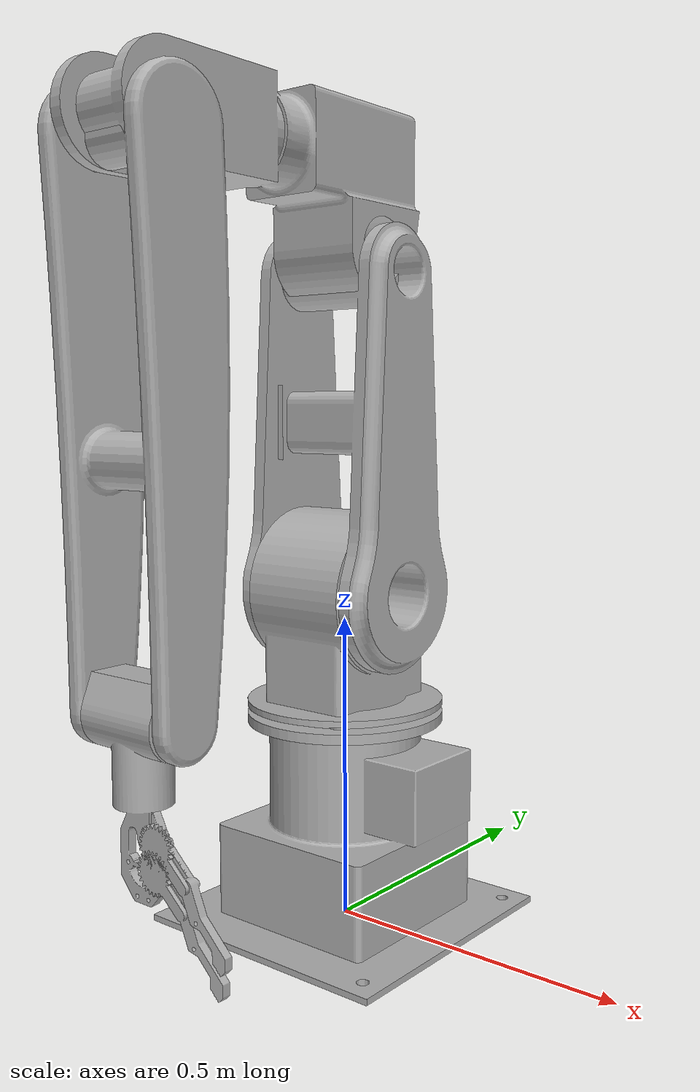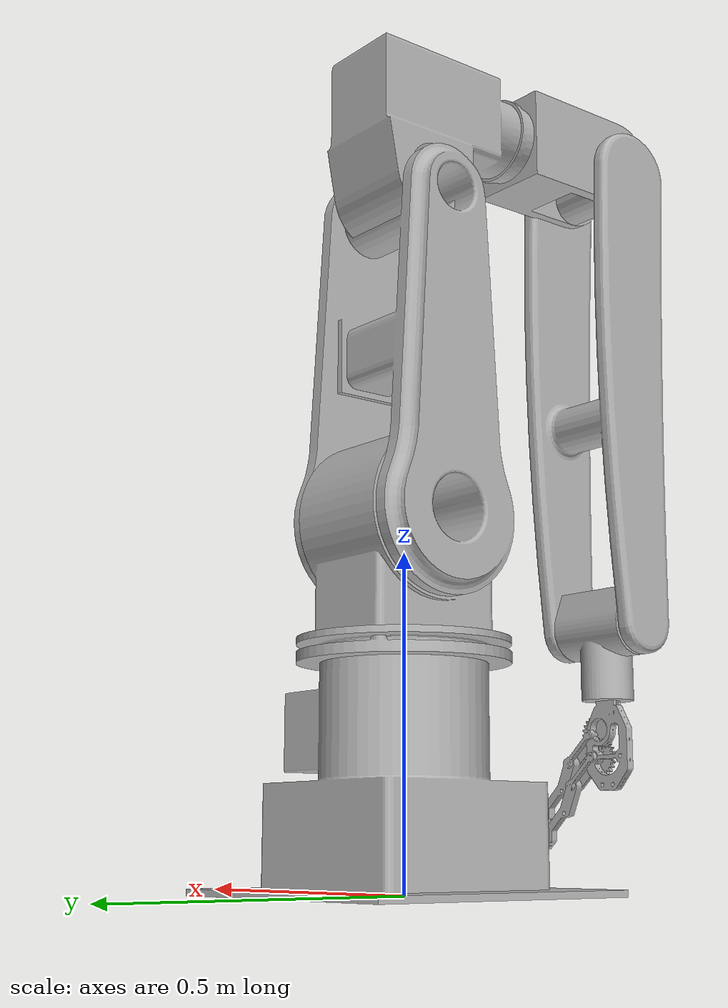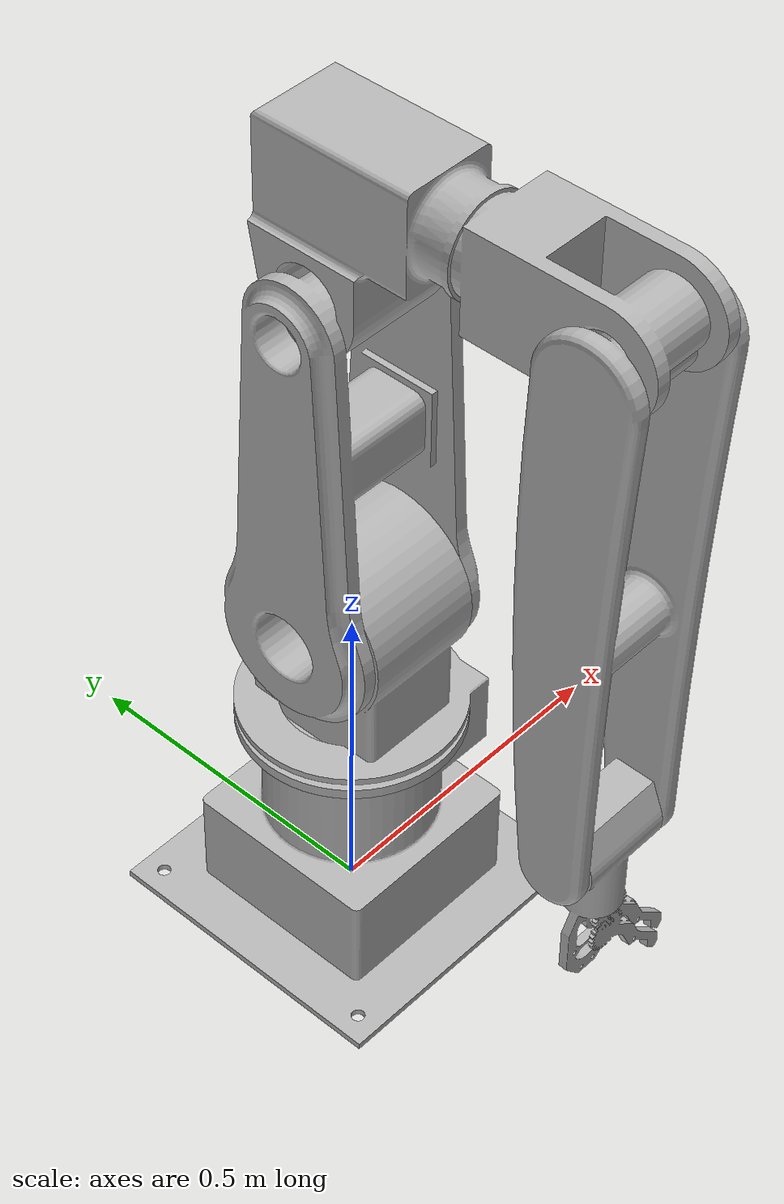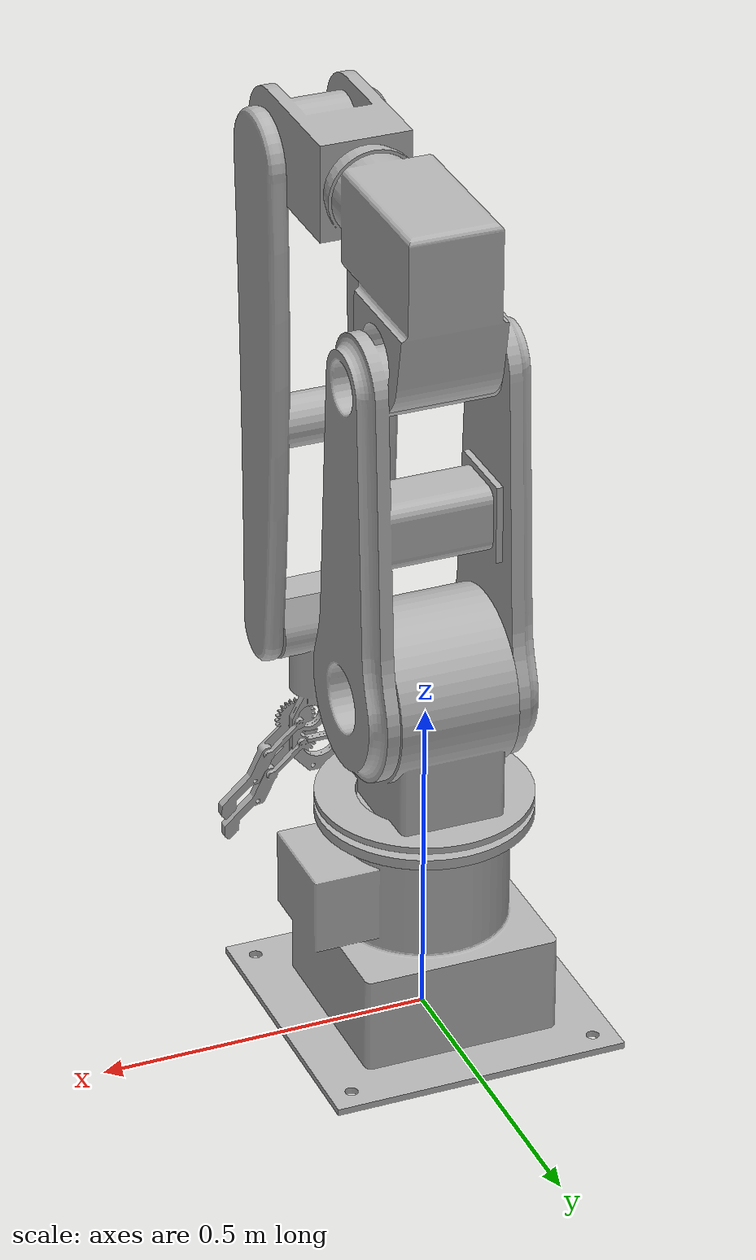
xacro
<?xml version="1.0" ?>
<robot name="gripperone" xmlns:xacro="http://www.ros.org/wiki/xacro">

<xacro:include filename="$(find gripperone_description)/urdf/materials.xacro" />
<xacro:include filename="$(find gripperone_description)/urdf/gripperone.trans" />
<xacro:include filename="$(find gripperone_description)/urdf/gripperone.gazebo" />

<link name= "world"/>

<joint name="fixed" type = "fixed">
	<parent link ="world"/>
	<child link ="base_link"/>
</joint>

<link name="base_link">
  <inertial>
    <origin rpy="0 0 0" xyz="0.013100742072346582 -9.696917427005168e-17 0.12843464984936392"/>
    <mass value="141.36352349403447"/>
    <inertia ixx="2.770677" ixy="0.0" ixz="-0.206615" iyy="3.022714" iyz="-0.0" izz="2.748975"/>
  </inertial>
  <visual>
    <origin rpy="0 0 0" xyz="0 0 0"/>
    <geometry>
      <mesh filename="package://gripperone_description/meshes/base_link.stl" scale="0.001 0.001 0.001"/>
    </geometry>
    <material name="silver"/>
  </visual>
  <collision>
    <origin rpy="0 0 0" xyz="0 0 0"/>
    <geometry>
      <mesh filename="package://gripperone_description/meshes/base_link.stl" scale="0.001 0.001 0.001"/>
    </geometry>
  </collision>
</link>

<link name="link1_1">
  <inertial>
    <origin rpy="0 0 0" xyz="-8.427211298900635e-08 5.7703347655740766e-08 0.09307568139810135"/>
    <mass value="113.94005755141684"/>
    <inertia ixx="2.418285" ixy="0.0" ixz="0.0" iyy="2.208886" iyz="-0.0" izz="0.859496"/>
  </inertial>
  <visual>
    <origin rpy="0 0 0" xyz="-0.0 -0.0 -0.37"/>
    <geometry>
      <mesh filename="package://gripperone_description/meshes/link1_1.stl" scale="0.001 0.001 0.001"/>
    </geometry>
    <material name="silver"/>
  </visual>
  <collision>
    <origin rpy="0 0 0" xyz="-0.0 -0.0 -0.37"/>
    <geometry>
      <mesh filename="package://gripperone_description/meshes/link1_1.stl" scale="0.001 0.001 0.001"/>
    </geometry>
  </collision>
</link>

<link name="link2_1">
  <inertial>
    <origin rpy="0 0 0" xyz="2.848833931279658e-09 7.523744194818709e-09 0.19455703848130457"/>
    <mass value="96.27136210018317"/>
    <inertia ixx="3.396419" ixy="0.0" ixz="0.0" iyy="4.009316" iyz="-0.0" izz="1.077023"/>
  </inertial>
  <visual>
    <origin rpy="0 0 0" xyz="-0.0 -0.0 -0.586"/>
    <geometry>
      <mesh filename="package://gripperone_description/meshes/link2_1.stl" scale="0.001 0.001 0.001"/>
    </geometry>
    <material name="silver"/>
  </visual>
  <collision>
    <origin rpy="0 0 0" xyz="-0.0 -0.0 -0.586"/>
    <geometry>
      <mesh filename="package://gripperone_description/meshes/link2_1.stl" scale="0.001 0.001 0.001"/>
    </geometry>
  </collision>
</link>

<link name="link3_1">
  <inertial>
    <origin rpy="0 0 0" xyz="1.6361981853577748e-11 -0.12111140707026075 0.11882892529648226"/>
    <mass value="89.40771046157806"/>
    <inertia ixx="2.454822" ixy="-0.0" ixz="0.0" iyy="0.570231" iyz="0.274684" izz="2.203132"/>
  </inertial>
  <visual>
    <origin rpy="0 0 0" xyz="-0.0 -0.0 -1.086"/>
    <geometry>
      <mesh filename="package://gripperone_description/meshes/link3_1.stl" scale="0.001 0.001 0.001"/>
    </geometry>
    <material name="silver"/>
  </visual>
  <collision>
    <origin rpy="0 0 0" xyz="-0.0 -0.0 -1.086"/>
    <geometry>
      <mesh filename="package://gripperone_description/meshes/link3_1.stl" scale="0.001 0.001 0.001"/>
    </geometry>
  </collision>
</link>

<link name="link4_1">
  <inertial>
    <origin rpy="0 0 0" xyz="5.732430246041531e-09 0.006084952212643602 -0.350432800798794"/>
    <mass value="67.90969466672291"/>
    <inertia ixx="4.721933" ixy="0.0" ixz="0.0" iyy="5.052297" iyz="0.010769" izz="0.494355"/>
  </inertial>
  <visual>
    <origin rpy="0 0 0" xyz="-0.0 0.427705 -1.229651"/>
    <geometry>
      <mesh filename="package://gripperone_description/meshes/link4_1.stl" scale="0.001 0.001 0.001"/>
    </geometry>
    <material name="silver"/>
  </visual>
  <collision>
    <origin rpy="0 0 0" xyz="-0.0 0.427705 -1.229651"/>
    <geometry>
      <mesh filename="package://gripperone_description/meshes/link4_1.stl" scale="0.001 0.001 0.001"/>
    </geometry>
  </collision>
</link>

<link name="link5_1">
  <inertial>
    <origin rpy="0 0 0" xyz="-0.00019749374404857904 0.00011331788739532556 -0.037173182060112164"/>
    <mass value="9.640360366038745"/>
    <inertia ixx="0.052864" ixy="3e-06" ixz="-0.000271" iyy="0.057534" iyz="0.000179" izz="0.017456"/>
  </inertial>
  <visual>
    <origin rpy="0 0 0" xyz="-0.0 0.427705 -0.459651"/>
    <geometry>
      <mesh filename="package://gripperone_description/meshes/link5_1.stl" scale="0.001 0.001 0.001"/>
    </geometry>
    <material name="silver"/>
  </visual>
  <collision>
    <origin rpy="0 0 0" xyz="-0.0 0.427705 -0.459651"/>
    <geometry>
      <mesh filename="package://gripperone_description/meshes/link5_1.stl" scale="0.001 0.001 0.001"/>
    </geometry>
  </collision>
</link>

<link name="finger2_1">
  <inertial>
    <origin rpy="0 0 0" xyz="-0.04829429334826497 0.003040511211788388 -0.05130413342970386"/>
    <mass value="0.4623368422198283"/>
    <inertia ixx="0.001069" ixy="6.5e-05" ixz="-0.000864" iyy="0.001847" iyz="7.3e-05" izz="0.000811"/>
  </inertial>
  <visual>
    <origin rpy="0 0 0" xyz="0.03137 0.43251 -0.249342"/>
    <geometry>
      <mesh filename="package://gripperone_description/meshes/finger2_1.stl" scale="0.001 0.001 0.001"/>
    </geometry>
    <material name="silver"/>
  </visual>
  <collision>
    <origin rpy="0 0 0" xyz="0.03137 0.43251 -0.249342"/>
    <geometry>
      <mesh filename="package://gripperone_description/meshes/finger2_1.stl" scale="0.001 0.001 0.001"/>
    </geometry>
  </collision>
</link>

<link name="finger1_1">
  <inertial>
    <origin rpy="0 0 0" xyz="0.04744712111684282 0.003574152417180565 -0.050098979095702684"/>
    <mass value="0.48552638735874726"/>
    <inertia ixx="0.001074" ixy="-5.1e-05" ixz="0.000898" iyy="0.001899" iyz="5.4e-05" izz="0.000871"/>
  </inertial>
  <visual>
    <origin rpy="0 0 0" xyz="-0.02803 0.43251 -0.249187"/>
    <geometry>
      <mesh filename="package://gripperone_description/meshes/finger1_1.stl" scale="0.001 0.001 0.001"/>
    </geometry>
    <material name="silver"/>
  </visual>
  <collision>
    <origin rpy="0 0 0" xyz="-0.02803 0.43251 -0.249187"/>
    <geometry>
      <mesh filename="package://gripperone_description/meshes/finger1_1.stl" scale="0.001 0.001 0.001"/>
    </geometry>
  </collision>
</link>

<joint name="Rev1" type="continuous">
  <origin rpy="0 0 0" xyz="0.0 0.0 0.37"/>
  <parent link="base_link"/>
  <child link="link1_1"/>
  <axis xyz="0.0 0.0 -1.0"/>
</joint>

<joint name="Rev2" type="continuous">
  <origin rpy="0 0 0" xyz="0.0 0.0 0.216"/>
  <parent link="link1_1"/>
  <child link="link2_1"/>
  <axis xyz="1.0 0.0 -0.0"/>
</joint>

<joint name="Rev3" type="continuous">
  <origin rpy="0 0 0" xyz="0.0 0.0 0.5"/>
  <parent link="link2_1"/>
  <child link="link3_1"/>
  <axis xyz="-1.0 0.0 0.0"/>
</joint>

<joint name="Rev4" type="continuous">
  <origin rpy="0 0 0" xyz="0.0 -0.427705 0.143651"/>
  <parent link="link3_1"/>
  <child link="link4_1"/>
  <axis xyz="1.0 0.0 -0.0"/>
</joint>

<joint name="Rev5" type="continuous">
  <origin rpy="0 0 0" xyz="0.0 0.0 -0.77"/>
  <parent link="link4_1"/>
  <child link="link5_1"/>
  <axis xyz="-1.0 -0.0 0.0"/>
</joint>

<joint name="Rev6" type="continuous">
  <origin rpy="0 0 0" xyz="-0.03137 -0.004805 -0.210309"/>
  <parent link="link5_1"/>
  <child link="finger2_1"/>
  <axis xyz="-0.0 -1.0 -0.0"/>
</joint>

<joint name="Rev7" type="continuous">
  <origin rpy="0 0 0" xyz="0.02803 -0.004805 -0.210464"/>
  <parent link="link5_1"/>
  <child link="finger1_1"/>
  <axis xyz="-0.0 -1.0 -0.0"/>
</joint>

</robot>

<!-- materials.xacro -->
<robot name="gripperone" xmlns:xacro="http://www.ros.org/wiki/xacro" >

<material name="silver">
  <color rgba="0.700 0.700 0.700 1.000"/>
</material>

</robot>

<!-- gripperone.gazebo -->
<robot name="gripperone" xmlns:xacro="http://www.ros.org/wiki/xacro" >

<xacro:property name="body_color" value="Gazebo/Silver" />

  <gazebo>
    <plugin name="gazebo_ros_control" filename="libgazebo_ros_control.so">
      <robotNamespace>/gripperone</robotNamespace>
      <robotSimType>gazebo_ros_control/DefaultRobotHWSim</robotSimType>
    </plugin>
  </gazebo>

<gazebo reference="base_link">
  <material>${body_color}</material>
  <mu1>0.2</mu1>
  <mu2>0.2</mu2>
  <selfCollide>true</selfCollide>
  <gravity>true</gravity>
</gazebo>

<gazebo reference="link1_1">
  <material>${body_color}</material>
  <mu1>0.2</mu1>
  <mu2>0.2</mu2>
  <selfCollide>true</selfCollide>
</gazebo>

<gazebo reference="link2_1">
  <material>${body_color}</material>
  <mu1>0.2</mu1>
  <mu2>0.2</mu2>
  <selfCollide>true</selfCollide>
</gazebo>

<gazebo reference="link3_1">
  <material>${body_color}</material>
  <mu1>0.2</mu1>
  <mu2>0.2</mu2>
  <selfCollide>true</selfCollide>
</gazebo>

<gazebo reference="link4_1">
  <material>${body_color}</material>
  <mu1>0.2</mu1>
  <mu2>0.2</mu2>
  <selfCollide>true</selfCollide>
</gazebo>

<gazebo reference="link5_1">
  <material>${body_color}</material>
  <mu1>0.2</mu1>
  <mu2>0.2</mu2>
  <selfCollide>true</selfCollide>
</gazebo>

<gazebo reference="finger2_1">
  <material>${body_color}</material>
  <mu1>0.2</mu1>
  <mu2>0.2</mu2>
  <selfCollide>true</selfCollide>
</gazebo>

<gazebo reference="finger1_1">
  <material>${body_color}</material>
  <mu1>0.2</mu1>
  <mu2>0.2</mu2>
  <selfCollide>true</selfCollide>
</gazebo>

</robot>
